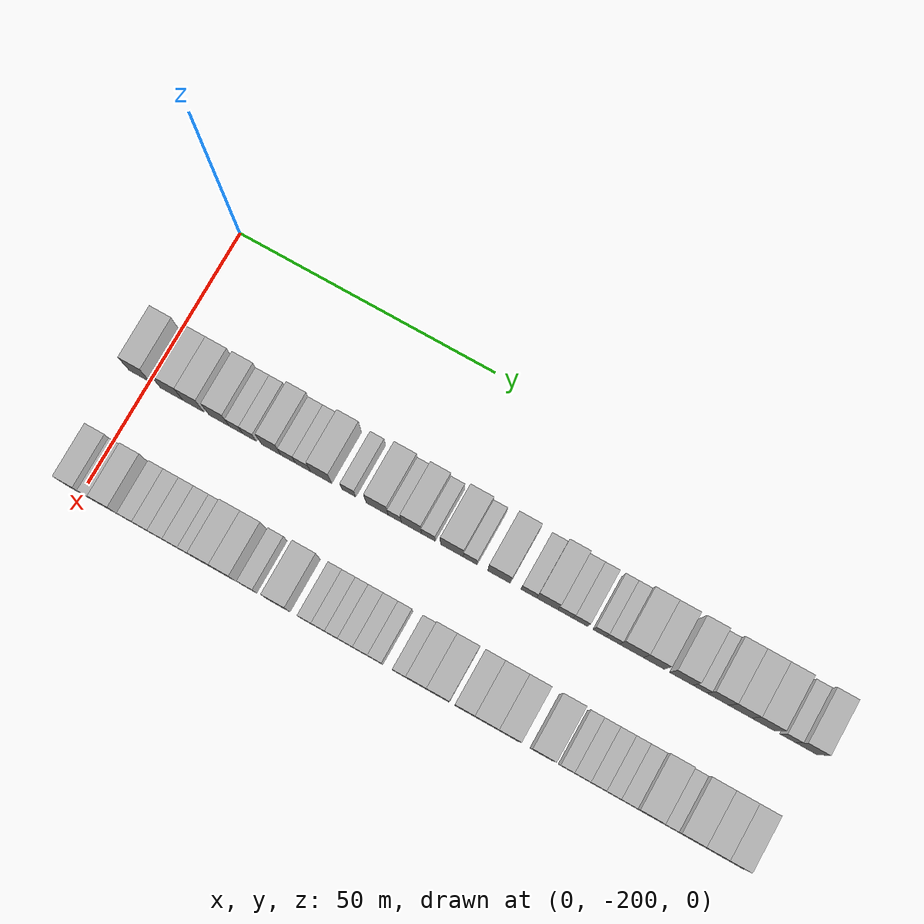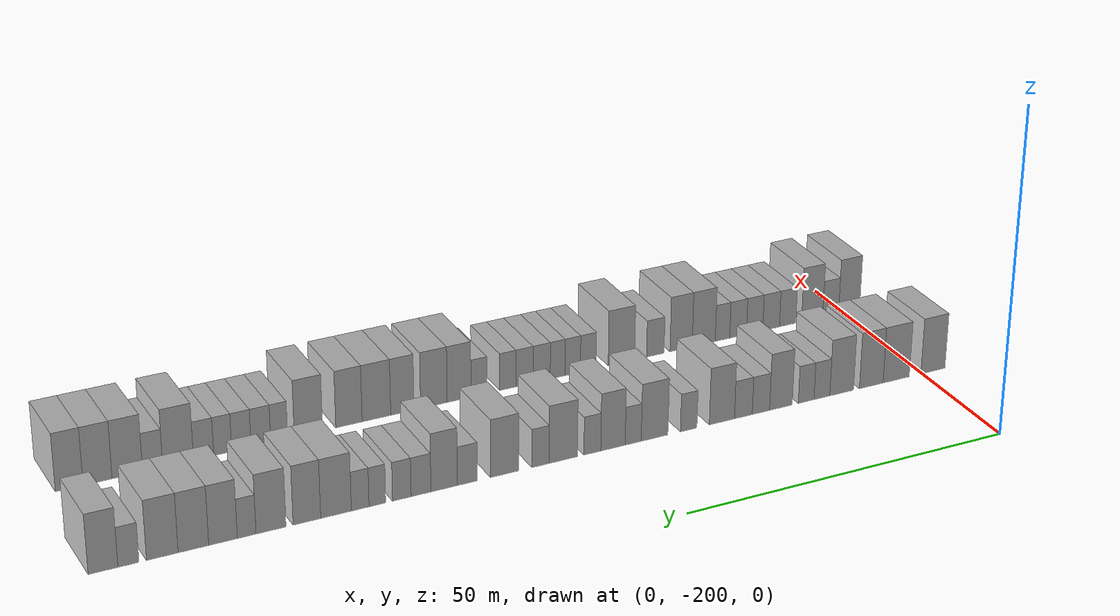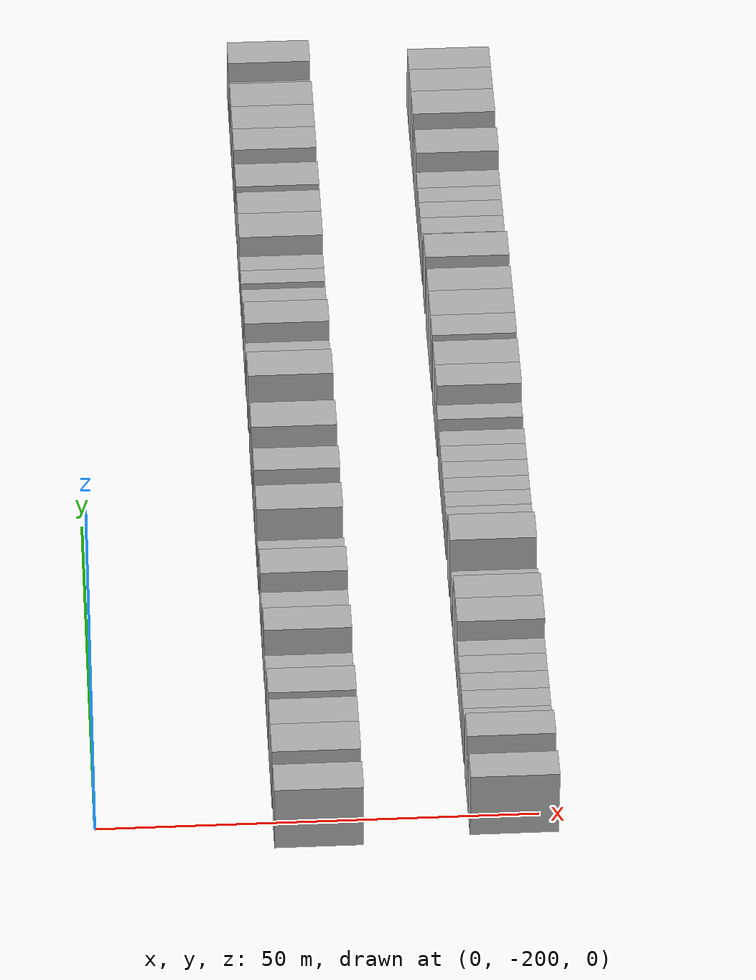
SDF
<sdf version="1.6">
 <world name="default">
  <model name="building_1">
   <static>1</static>
   <pose>25.0000 -201.9067 0 0.000000 0.000000 0.000000</pose>
   <link name="link">
    <pose>0 0 4.50 0 0 0</pose>
    <collision name="collision"><geometry><box><size>10.0000 4.1866 9.0000</size></box></geometry></collision>
    <visual name="visual">
     <cast_shadows>0</cast_shadows>
     <geometry><box><size>10.0000 4.1866 9.0000</size></box></geometry>
     <material>
      <script>
       <uri>model://HANNAS_wall/materials/scripts</uri>
       <uri>model://HANNAS_wall/materials/textures</uri>
       <name>vrc/HANNAS_wall</name>
      </script>
     </material>
    </visual>
   </link>
  </model>
  <model name="building_2">
   <static>1</static>
   <pose>25.0000 -195.5699 0 0.000000 0.000000 0.000000</pose>
   <link name="link">
    <pose>0 0 4.50 0 0 0</pose>
    <collision name="collision"><geometry><box><size>10.0000 4.4871 9.0000</size></box></geometry></collision>
    <visual name="visual">
     <cast_shadows>0</cast_shadows>
     <geometry><box><size>10.0000 4.4871 9.0000</size></box></geometry>
     <material>
      <script>
       <uri>model://HANNAS_wall/materials/scripts</uri>
       <uri>model://HANNAS_wall/materials/textures</uri>
       <name>vrc/HANNAS_wall</name>
      </script>
     </material>
    </visual>
   </link>
  </model>
  <model name="building_3">
   <static>1</static>
   <pose>25.0000 -191.3050 0 0.000000 0.000000 0.000000</pose>
   <link name="link">
    <pose>0 0 4.50 0 0 0</pose>
    <collision name="collision"><geometry><box><size>10.0000 4.0426 9.0000</size></box></geometry></collision>
    <visual name="visual">
     <cast_shadows>0</cast_shadows>
     <geometry><box><size>10.0000 4.0426 9.0000</size></box></geometry>
     <material>
      <script>
       <uri>model://HANNAS_wall/materials/scripts</uri>
       <uri>model://HANNAS_wall/materials/textures</uri>
       <name>vrc/HANNAS_wall</name>
      </script>
     </material>
    </visual>
   </link>
  </model>
  <model name="building_4">
   <static>1</static>
   <pose>25.0000 -186.2852 0 0.000000 0.000000 0.000000</pose>
   <link name="link">
    <pose>0 0 4.50 0 0 0</pose>
    <collision name="collision"><geometry><box><size>10.0000 3.9970 9.0000</size></box></geometry></collision>
    <visual name="visual">
     <cast_shadows>0</cast_shadows>
     <geometry><box><size>10.0000 3.9970 9.0000</size></box></geometry>
     <material>
      <script>
       <uri>model://HANNAS_wall/materials/scripts</uri>
       <uri>model://HANNAS_wall/materials/textures</uri>
       <name>vrc/HANNAS_wall</name>
      </script>
     </material>
    </visual>
   </link>
  </model>
  <model name="building_5">
   <static>1</static>
   <pose>25.0000 -182.9670 0 0.000000 0.000000 0.000000</pose>
   <link name="link">
    <pose>0 0 3.00 0 0 0</pose>
    <collision name="collision"><geometry><box><size>10.0000 2.6395 6.0000</size></box></geometry></collision>
    <visual name="visual">
     <cast_shadows>0</cast_shadows>
     <geometry><box><size>10.0000 2.6395 6.0000</size></box></geometry>
     <material>
      <script>
       <uri>model://HANNAS_wall/materials/scripts</uri>
       <uri>model://HANNAS_wall/materials/textures</uri>
       <name>vrc/HANNAS_wall</name>
      </script>
     </material>
    </visual>
   </link>
  </model>
  <model name="building_6">
   <static>1</static>
   <pose>25.0000 -180.3397 0 0.000000 0.000000 0.000000</pose>
   <link name="link">
    <pose>0 0 3.00 0 0 0</pose>
    <collision name="collision"><geometry><box><size>10.0000 2.6151 6.0000</size></box></geometry></collision>
    <visual name="visual">
     <cast_shadows>0</cast_shadows>
     <geometry><box><size>10.0000 2.6151 6.0000</size></box></geometry>
     <material>
      <script>
       <uri>model://HANNAS_wall/materials/scripts</uri>
       <uri>model://HANNAS_wall/materials/textures</uri>
       <name>vrc/HANNAS_wall</name>
      </script>
     </material>
    </visual>
   </link>
  </model>
  <model name="building_7">
   <static>1</static>
   <pose>25.0000 -176.1576 0 0.000000 0.000000 0.000000</pose>
   <link name="link">
    <pose>0 0 4.50 0 0 0</pose>
    <collision name="collision"><geometry><box><size>10.0000 3.7491 9.0000</size></box></geometry></collision>
    <visual name="visual">
     <cast_shadows>0</cast_shadows>
     <geometry><box><size>10.0000 3.7491 9.0000</size></box></geometry>
     <material>
      <script>
       <uri>model://HANNAS_wall/materials/scripts</uri>
       <uri>model://HANNAS_wall/materials/textures</uri>
       <name>vrc/HANNAS_wall</name>
      </script>
     </material>
    </visual>
   </link>
  </model>
  <model name="building_8">
   <static>1</static>
   <pose>25.0000 -172.8619 0 0.000000 0.000000 0.000000</pose>
   <link name="link">
    <pose>0 0 3.00 0 0 0</pose>
    <collision name="collision"><geometry><box><size>10.0000 2.8423 6.0000</size></box></geometry></collision>
    <visual name="visual">
     <cast_shadows>0</cast_shadows>
     <geometry><box><size>10.0000 2.8423 6.0000</size></box></geometry>
     <material>
      <script>
       <uri>model://HANNAS_wall/materials/scripts</uri>
       <uri>model://HANNAS_wall/materials/textures</uri>
       <name>vrc/HANNAS_wall</name>
      </script>
     </material>
    </visual>
   </link>
  </model>
  <model name="building_9">
   <static>1</static>
   <pose>25.0000 -169.9930 0 0.000000 0.000000 0.000000</pose>
   <link name="link">
    <pose>0 0 3.00 0 0 0</pose>
    <collision name="collision"><geometry><box><size>10.0000 2.8954 6.0000</size></box></geometry></collision>
    <visual name="visual">
     <cast_shadows>0</cast_shadows>
     <geometry><box><size>10.0000 2.8954 6.0000</size></box></geometry>
     <material>
      <script>
       <uri>model://HANNAS_wall/materials/scripts</uri>
       <uri>model://HANNAS_wall/materials/textures</uri>
       <name>vrc/HANNAS_wall</name>
      </script>
     </material>
    </visual>
   </link>
  </model>
  <model name="building_10">
   <static>1</static>
   <pose>25.0000 -166.5042 0 0.000000 0.000000 0.000000</pose>
   <link name="link">
    <pose>0 0 4.50 0 0 0</pose>
    <collision name="collision"><geometry><box><size>10.0000 4.0820 9.0000</size></box></geometry></collision>
    <visual name="visual">
     <cast_shadows>0</cast_shadows>
     <geometry><box><size>10.0000 4.0820 9.0000</size></box></geometry>
     <material>
      <script>
       <uri>model://HANNAS_wall/materials/scripts</uri>
       <uri>model://HANNAS_wall/materials/textures</uri>
       <name>vrc/HANNAS_wall</name>
      </script>
     </material>
    </visual>
   </link>
  </model>
  <model name="building_11">
   <static>1</static>
   <pose>25.0000 -161.1423 0 0.000000 0.000000 0.000000</pose>
   <link name="link">
    <pose>0 0 3.00 0 0 0</pose>
    <collision name="collision"><geometry><box><size>10.0000 2.6419 6.0000</size></box></geometry></collision>
    <visual name="visual">
     <cast_shadows>0</cast_shadows>
     <geometry><box><size>10.0000 2.6419 6.0000</size></box></geometry>
     <material>
      <script>
       <uri>model://HANNAS_wall/materials/scripts</uri>
       <uri>model://HANNAS_wall/materials/textures</uri>
       <name>vrc/HANNAS_wall</name>
      </script>
     </material>
    </visual>
   </link>
  </model>
  <model name="building_12">
   <static>1</static>
   <pose>25.0000 -155.7077 0 0.000000 0.000000 0.000000</pose>
   <link name="link">
    <pose>0 0 4.50 0 0 0</pose>
    <collision name="collision"><geometry><box><size>10.0000 4.2272 9.0000</size></box></geometry></collision>
    <visual name="visual">
     <cast_shadows>0</cast_shadows>
     <geometry><box><size>10.0000 4.2272 9.0000</size></box></geometry>
     <material>
      <script>
       <uri>model://HANNAS_wall/materials/scripts</uri>
       <uri>model://HANNAS_wall/materials/textures</uri>
       <name>vrc/HANNAS_wall</name>
      </script>
     </material>
    </visual>
   </link>
  </model>
  <model name="building_13">
   <static>1</static>
   <pose>25.0000 -152.3350 0 0.000000 0.000000 0.000000</pose>
   <link name="link">
    <pose>0 0 3.00 0 0 0</pose>
    <collision name="collision"><geometry><box><size>10.0000 2.5183 6.0000</size></box></geometry></collision>
    <visual name="visual">
     <cast_shadows>0</cast_shadows>
     <geometry><box><size>10.0000 2.5183 6.0000</size></box></geometry>
     <material>
      <script>
       <uri>model://HANNAS_wall/materials/scripts</uri>
       <uri>model://HANNAS_wall/materials/textures</uri>
       <name>vrc/HANNAS_wall</name>
      </script>
     </material>
    </visual>
   </link>
  </model>
  <model name="building_14">
   <static>1</static>
   <pose>25.0000 -149.1588 0 0.000000 0.000000 0.000000</pose>
   <link name="link">
    <pose>0 0 4.50 0 0 0</pose>
    <collision name="collision"><geometry><box><size>10.0000 3.8340 9.0000</size></box></geometry></collision>
    <visual name="visual">
     <cast_shadows>0</cast_shadows>
     <geometry><box><size>10.0000 3.8340 9.0000</size></box></geometry>
     <material>
      <script>
       <uri>model://HANNAS_wall/materials/scripts</uri>
       <uri>model://HANNAS_wall/materials/textures</uri>
       <name>vrc/HANNAS_wall</name>
      </script>
     </material>
    </visual>
   </link>
  </model>
  <model name="building_15">
   <static>1</static>
   <pose>25.0000 -145.9305 0 0.000000 0.000000 0.000000</pose>
   <link name="link">
    <pose>0 0 3.00 0 0 0</pose>
    <collision name="collision"><geometry><box><size>10.0000 2.6226 6.0000</size></box></geometry></collision>
    <visual name="visual">
     <cast_shadows>0</cast_shadows>
     <geometry><box><size>10.0000 2.6226 6.0000</size></box></geometry>
     <material>
      <script>
       <uri>model://HANNAS_wall/materials/scripts</uri>
       <uri>model://HANNAS_wall/materials/textures</uri>
       <name>vrc/HANNAS_wall</name>
      </script>
     </material>
    </visual>
   </link>
  </model>
  <model name="building_16">
   <static>1</static>
   <pose>25.0000 -141.4418 0 0.000000 0.000000 0.000000</pose>
   <link name="link">
    <pose>0 0 4.50 0 0 0</pose>
    <collision name="collision"><geometry><box><size>10.0000 4.3547 9.0000</size></box></geometry></collision>
    <visual name="visual">
     <cast_shadows>0</cast_shadows>
     <geometry><box><size>10.0000 4.3547 9.0000</size></box></geometry>
     <material>
      <script>
       <uri>model://HANNAS_wall/materials/scripts</uri>
       <uri>model://HANNAS_wall/materials/textures</uri>
       <name>vrc/HANNAS_wall</name>
      </script>
     </material>
    </visual>
   </link>
  </model>
  <model name="building_17">
   <static>1</static>
   <pose>25.0000 -137.9438 0 0.000000 0.000000 0.000000</pose>
   <link name="link">
    <pose>0 0 3.00 0 0 0</pose>
    <collision name="collision"><geometry><box><size>10.0000 2.6413 6.0000</size></box></geometry></collision>
    <visual name="visual">
     <cast_shadows>0</cast_shadows>
     <geometry><box><size>10.0000 2.6413 6.0000</size></box></geometry>
     <material>
      <script>
       <uri>model://HANNAS_wall/materials/scripts</uri>
       <uri>model://HANNAS_wall/materials/textures</uri>
       <name>vrc/HANNAS_wall</name>
      </script>
     </material>
    </visual>
   </link>
  </model>
  <model name="building_18">
   <static>1</static>
   <pose>25.0000 -132.4843 0 0.000000 0.000000 0.000000</pose>
   <link name="link">
    <pose>0 0 4.50 0 0 0</pose>
    <collision name="collision"><geometry><box><size>10.0000 4.2777 9.0000</size></box></geometry></collision>
    <visual name="visual">
     <cast_shadows>0</cast_shadows>
     <geometry><box><size>10.0000 4.2777 9.0000</size></box></geometry>
     <material>
      <script>
       <uri>model://HANNAS_wall/materials/scripts</uri>
       <uri>model://HANNAS_wall/materials/textures</uri>
       <name>vrc/HANNAS_wall</name>
      </script>
     </material>
    </visual>
   </link>
  </model>
  <model name="building_19">
   <static>1</static>
   <pose>25.0000 -126.8623 0 0.000000 0.000000 0.000000</pose>
   <link name="link">
    <pose>0 0 3.00 0 0 0</pose>
    <collision name="collision"><geometry><box><size>10.0000 2.9662 6.0000</size></box></geometry></collision>
    <visual name="visual">
     <cast_shadows>0</cast_shadows>
     <geometry><box><size>10.0000 2.9662 6.0000</size></box></geometry>
     <material>
      <script>
       <uri>model://HANNAS_wall/materials/scripts</uri>
       <uri>model://HANNAS_wall/materials/textures</uri>
       <name>vrc/HANNAS_wall</name>
      </script>
     </material>
    </visual>
   </link>
  </model>
  <model name="building_20">
   <static>1</static>
   <pose>25.0000 -123.4100 0 0.000000 0.000000 0.000000</pose>
   <link name="link">
    <pose>0 0 4.50 0 0 0</pose>
    <collision name="collision"><geometry><box><size>10.0000 3.9384 9.0000</size></box></geometry></collision>
    <visual name="visual">
     <cast_shadows>0</cast_shadows>
     <geometry><box><size>10.0000 3.9384 9.0000</size></box></geometry>
     <material>
      <script>
       <uri>model://HANNAS_wall/materials/scripts</uri>
       <uri>model://HANNAS_wall/materials/textures</uri>
       <name>vrc/HANNAS_wall</name>
      </script>
     </material>
    </visual>
   </link>
  </model>
  <model name="building_21">
   <static>1</static>
   <pose>25.0000 -119.9843 0 0.000000 0.000000 0.000000</pose>
   <link name="link">
    <pose>0 0 3.00 0 0 0</pose>
    <collision name="collision"><geometry><box><size>10.0000 2.9129 6.0000</size></box></geometry></collision>
    <visual name="visual">
     <cast_shadows>0</cast_shadows>
     <geometry><box><size>10.0000 2.9129 6.0000</size></box></geometry>
     <material>
      <script>
       <uri>model://HANNAS_wall/materials/scripts</uri>
       <uri>model://HANNAS_wall/materials/textures</uri>
       <name>vrc/HANNAS_wall</name>
      </script>
     </material>
    </visual>
   </link>
  </model>
  <model name="building_22">
   <static>1</static>
   <pose>25.0000 -117.1585 0 0.000000 0.000000 0.000000</pose>
   <link name="link">
    <pose>0 0 3.00 0 0 0</pose>
    <collision name="collision"><geometry><box><size>10.0000 2.7387 6.0000</size></box></geometry></collision>
    <visual name="visual">
     <cast_shadows>0</cast_shadows>
     <geometry><box><size>10.0000 2.7387 6.0000</size></box></geometry>
     <material>
      <script>
       <uri>model://HANNAS_wall/materials/scripts</uri>
       <uri>model://HANNAS_wall/materials/textures</uri>
       <name>vrc/HANNAS_wall</name>
      </script>
     </material>
    </visual>
   </link>
  </model>
  <model name="building_23">
   <static>1</static>
   <pose>25.0000 -113.5812 0 0.000000 0.000000 0.000000</pose>
   <link name="link">
    <pose>0 0 3.00 0 0 0</pose>
    <collision name="collision"><geometry><box><size>10.0000 2.4157 6.0000</size></box></geometry></collision>
    <visual name="visual">
     <cast_shadows>0</cast_shadows>
     <geometry><box><size>10.0000 2.4157 6.0000</size></box></geometry>
     <material>
      <script>
       <uri>model://HANNAS_wall/materials/scripts</uri>
       <uri>model://HANNAS_wall/materials/textures</uri>
       <name>vrc/HANNAS_wall</name>
      </script>
     </material>
    </visual>
   </link>
  </model>
  <model name="building_24">
   <static>1</static>
   <pose>25.0000 -111.0891 0 0.000000 0.000000 0.000000</pose>
   <link name="link">
    <pose>0 0 3.00 0 0 0</pose>
    <collision name="collision"><geometry><box><size>10.0000 2.5686 6.0000</size></box></geometry></collision>
    <visual name="visual">
     <cast_shadows>0</cast_shadows>
     <geometry><box><size>10.0000 2.5686 6.0000</size></box></geometry>
     <material>
      <script>
       <uri>model://HANNAS_wall/materials/scripts</uri>
       <uri>model://HANNAS_wall/materials/textures</uri>
       <name>vrc/HANNAS_wall</name>
      </script>
     </material>
    </visual>
   </link>
  </model>
  <model name="building_25">
   <static>1</static>
   <pose>25.0000 -107.6011 0 0.000000 0.000000 0.000000</pose>
   <link name="link">
    <pose>0 0 4.50 0 0 0</pose>
    <collision name="collision"><geometry><box><size>10.0000 4.4074 9.0000</size></box></geometry></collision>
    <visual name="visual">
     <cast_shadows>0</cast_shadows>
     <geometry><box><size>10.0000 4.4074 9.0000</size></box></geometry>
     <material>
      <script>
       <uri>model://HANNAS_wall/materials/scripts</uri>
       <uri>model://HANNAS_wall/materials/textures</uri>
       <name>vrc/HANNAS_wall</name>
      </script>
     </material>
    </visual>
   </link>
  </model>
  <model name="building_26">
   <static>1</static>
   <pose>25.0000 -103.4328 0 0.000000 0.000000 0.000000</pose>
   <link name="link">
    <pose>0 0 4.50 0 0 0</pose>
    <collision name="collision"><geometry><box><size>10.0000 3.9291 9.0000</size></box></geometry></collision>
    <visual name="visual">
     <cast_shadows>0</cast_shadows>
     <geometry><box><size>10.0000 3.9291 9.0000</size></box></geometry>
     <material>
      <script>
       <uri>model://HANNAS_wall/materials/scripts</uri>
       <uri>model://HANNAS_wall/materials/textures</uri>
       <name>vrc/HANNAS_wall</name>
      </script>
     </material>
    </visual>
   </link>
  </model>
  <model name="building_27">
   <static>1</static>
   <pose>25.0000 -98.3525 0 0.000000 0.000000 0.000000</pose>
   <link name="link">
    <pose>0 0 4.50 0 0 0</pose>
    <collision name="collision"><geometry><box><size>10.0000 4.2314 9.0000</size></box></geometry></collision>
    <visual name="visual">
     <cast_shadows>0</cast_shadows>
     <geometry><box><size>10.0000 4.2314 9.0000</size></box></geometry>
     <material>
      <script>
       <uri>model://HANNAS_wall/materials/scripts</uri>
       <uri>model://HANNAS_wall/materials/textures</uri>
       <name>vrc/HANNAS_wall</name>
      </script>
     </material>
    </visual>
   </link>
  </model>
  <model name="building_28">
   <static>1</static>
   <pose>25.0000 -94.9310 0 0.000000 0.000000 0.000000</pose>
   <link name="link">
    <pose>0 0 3.00 0 0 0</pose>
    <collision name="collision"><geometry><box><size>10.0000 2.6116 6.0000</size></box></geometry></collision>
    <visual name="visual">
     <cast_shadows>0</cast_shadows>
     <geometry><box><size>10.0000 2.6116 6.0000</size></box></geometry>
     <material>
      <script>
       <uri>model://HANNAS_wall/materials/scripts</uri>
       <uri>model://HANNAS_wall/materials/textures</uri>
       <name>vrc/HANNAS_wall</name>
      </script>
     </material>
    </visual>
   </link>
  </model>
  <model name="building_29">
   <static>1</static>
   <pose>25.0000 -91.6338 0 0.000000 0.000000 0.000000</pose>
   <link name="link">
    <pose>0 0 4.50 0 0 0</pose>
    <collision name="collision"><geometry><box><size>10.0000 3.9828 9.0000</size></box></geometry></collision>
    <visual name="visual">
     <cast_shadows>0</cast_shadows>
     <geometry><box><size>10.0000 3.9828 9.0000</size></box></geometry>
     <material>
      <script>
       <uri>model://HANNAS_wall/materials/scripts</uri>
       <uri>model://HANNAS_wall/materials/textures</uri>
       <name>vrc/HANNAS_wall</name>
      </script>
     </material>
    </visual>
   </link>
  </model>
  <model name="building_30">
   <static>1</static>
   <pose>25.0000 -87.5377 0 0.000000 0.000000 0.000000</pose>
   <link name="link">
    <pose>0 0 4.50 0 0 0</pose>
    <collision name="collision"><geometry><box><size>10.0000 4.2092 9.0000</size></box></geometry></collision>
    <visual name="visual">
     <cast_shadows>0</cast_shadows>
     <geometry><box><size>10.0000 4.2092 9.0000</size></box></geometry>
     <material>
      <script>
       <uri>model://HANNAS_wall/materials/scripts</uri>
       <uri>model://HANNAS_wall/materials/textures</uri>
       <name>vrc/HANNAS_wall</name>
      </script>
     </material>
    </visual>
   </link>
  </model>
  <model name="building_31">
   <static>1</static>
   <pose>25.0000 -83.2692 0 0.000000 0.000000 0.000000</pose>
   <link name="link">
    <pose>0 0 4.50 0 0 0</pose>
    <collision name="collision"><geometry><box><size>10.0000 4.3280 9.0000</size></box></geometry></collision>
    <visual name="visual">
     <cast_shadows>0</cast_shadows>
     <geometry><box><size>10.0000 4.3280 9.0000</size></box></geometry>
     <material>
      <script>
       <uri>model://HANNAS_wall/materials/scripts</uri>
       <uri>model://HANNAS_wall/materials/textures</uri>
       <name>vrc/HANNAS_wall</name>
      </script>
     </material>
    </visual>
   </link>
  </model>
  <model name="building_32">
   <static>1</static>
   <pose>25.0000 -78.6781 0 0.000000 0.000000 0.000000</pose>
   <link name="link">
    <pose>0 0 3.00 0 0 0</pose>
    <collision name="collision"><geometry><box><size>10.0000 2.8541 6.0000</size></box></geometry></collision>
    <visual name="visual">
     <cast_shadows>0</cast_shadows>
     <geometry><box><size>10.0000 2.8541 6.0000</size></box></geometry>
     <material>
      <script>
       <uri>model://HANNAS_wall/materials/scripts</uri>
       <uri>model://HANNAS_wall/materials/textures</uri>
       <name>vrc/HANNAS_wall</name>
      </script>
     </material>
    </visual>
   </link>
  </model>
  <model name="building_33">
   <static>1</static>
   <pose>25.0000 -75.2485 0 0.000000 0.000000 0.000000</pose>
   <link name="link">
    <pose>0 0 4.50 0 0 0</pose>
    <collision name="collision"><geometry><box><size>10.0000 4.0050 9.0000</size></box></geometry></collision>
    <visual name="visual">
     <cast_shadows>0</cast_shadows>
     <geometry><box><size>10.0000 4.0050 9.0000</size></box></geometry>
     <material>
      <script>
       <uri>model://HANNAS_wall/materials/scripts</uri>
       <uri>model://HANNAS_wall/materials/textures</uri>
       <name>vrc/HANNAS_wall</name>
      </script>
     </material>
    </visual>
   </link>
  </model>
  <model name="building_100">
   <static>1</static>
   <pose>47.0000 -201.1141 0 0.000000 0.000000 0.000000</pose>
   <link name="link">
    <pose>0 0 4.50 0 0 0</pose>
    <collision name="collision"><geometry><box><size>10.0000 3.7717 9.0000</size></box></geometry></collision>
    <visual name="visual">
     <cast_shadows>0</cast_shadows>
     <geometry><box><size>10.0000 3.7717 9.0000</size></box></geometry>
     <material>
      <script>
       <uri>model://HANNAS_wall/materials/scripts</uri>
       <uri>model://HANNAS_wall/materials/textures</uri>
       <name>vrc/HANNAS_wall</name>
      </script>
     </material>
    </visual>
   </link>
  </model>
  <model name="building_101">
   <static>1</static>
   <pose>47.0000 -197.8253 0 0.000000 0.000000 0.000000</pose>
   <link name="link">
    <pose>0 0 3.00 0 0 0</pose>
    <collision name="collision"><geometry><box><size>10.0000 2.8060 6.0000</size></box></geometry></collision>
    <visual name="visual">
     <cast_shadows>0</cast_shadows>
     <geometry><box><size>10.0000 2.8060 6.0000</size></box></geometry>
     <material>
      <script>
       <uri>model://HANNAS_wall/materials/scripts</uri>
       <uri>model://HANNAS_wall/materials/textures</uri>
       <name>vrc/HANNAS_wall</name>
      </script>
     </material>
    </visual>
   </link>
  </model>
  <model name="building_102">
   <static>1</static>
   <pose>47.0000 -194.5487 0 0.000000 0.000000 0.000000</pose>
   <link name="link">
    <pose>0 0 4.50 0 0 0</pose>
    <collision name="collision"><geometry><box><size>10.0000 3.7472 9.0000</size></box></geometry></collision>
    <visual name="visual">
     <cast_shadows>0</cast_shadows>
     <geometry><box><size>10.0000 3.7472 9.0000</size></box></geometry>
     <material>
      <script>
       <uri>model://HANNAS_wall/materials/scripts</uri>
       <uri>model://HANNAS_wall/materials/textures</uri>
       <name>vrc/HANNAS_wall</name>
      </script>
     </material>
    </visual>
   </link>
  </model>
  <model name="building_103">
   <static>1</static>
   <pose>47.0000 -190.2454 0 0.000000 0.000000 0.000000</pose>
   <link name="link">
    <pose>0 0 3.00 0 0 0</pose>
    <collision name="collision"><geometry><box><size>10.0000 2.8595 6.0000</size></box></geometry></collision>
    <visual name="visual">
     <cast_shadows>0</cast_shadows>
     <geometry><box><size>10.0000 2.8595 6.0000</size></box></geometry>
     <material>
      <script>
       <uri>model://HANNAS_wall/materials/scripts</uri>
       <uri>model://HANNAS_wall/materials/textures</uri>
       <name>vrc/HANNAS_wall</name>
      </script>
     </material>
    </visual>
   </link>
  </model>
  <model name="building_104">
   <static>1</static>
   <pose>47.0000 -187.3549 0 0.000000 0.000000 0.000000</pose>
   <link name="link">
    <pose>0 0 3.00 0 0 0</pose>
    <collision name="collision"><geometry><box><size>10.0000 2.9215 6.0000</size></box></geometry></collision>
    <visual name="visual">
     <cast_shadows>0</cast_shadows>
     <geometry><box><size>10.0000 2.9215 6.0000</size></box></geometry>
     <material>
      <script>
       <uri>model://HANNAS_wall/materials/scripts</uri>
       <uri>model://HANNAS_wall/materials/textures</uri>
       <name>vrc/HANNAS_wall</name>
      </script>
     </material>
    </visual>
   </link>
  </model>
  <model name="building_105">
   <static>1</static>
   <pose>47.0000 -184.4824 0 0.000000 0.000000 0.000000</pose>
   <link name="link">
    <pose>0 0 3.00 0 0 0</pose>
    <collision name="collision"><geometry><box><size>10.0000 2.8235 6.0000</size></box></geometry></collision>
    <visual name="visual">
     <cast_shadows>0</cast_shadows>
     <geometry><box><size>10.0000 2.8235 6.0000</size></box></geometry>
     <material>
      <script>
       <uri>model://HANNAS_wall/materials/scripts</uri>
       <uri>model://HANNAS_wall/materials/textures</uri>
       <name>vrc/HANNAS_wall</name>
      </script>
     </material>
    </visual>
   </link>
  </model>
  <model name="building_106">
   <static>1</static>
   <pose>47.0000 -181.6299 0 0.000000 0.000000 0.000000</pose>
   <link name="link">
    <pose>0 0 3.00 0 0 0</pose>
    <collision name="collision"><geometry><box><size>10.0000 2.8813 6.0000</size></box></geometry></collision>
    <visual name="visual">
     <cast_shadows>0</cast_shadows>
     <geometry><box><size>10.0000 2.8813 6.0000</size></box></geometry>
     <material>
      <script>
       <uri>model://HANNAS_wall/materials/scripts</uri>
       <uri>model://HANNAS_wall/materials/textures</uri>
       <name>vrc/HANNAS_wall</name>
      </script>
     </material>
    </visual>
   </link>
  </model>
  <model name="building_107">
   <static>1</static>
   <pose>47.0000 -178.9550 0 0.000000 0.000000 0.000000</pose>
   <link name="link">
    <pose>0 0 3.00 0 0 0</pose>
    <collision name="collision"><geometry><box><size>10.0000 2.4685 6.0000</size></box></geometry></collision>
    <visual name="visual">
     <cast_shadows>0</cast_shadows>
     <geometry><box><size>10.0000 2.4685 6.0000</size></box></geometry>
     <material>
      <script>
       <uri>model://HANNAS_wall/materials/scripts</uri>
       <uri>model://HANNAS_wall/materials/textures</uri>
       <name>vrc/HANNAS_wall</name>
      </script>
     </material>
    </visual>
   </link>
  </model>
  <model name="building_108">
   <static>1</static>
   <pose>47.0000 -175.7510 0 0.000000 0.000000 0.000000</pose>
   <link name="link">
    <pose>0 0 4.50 0 0 0</pose>
    <collision name="collision"><geometry><box><size>10.0000 3.9395 9.0000</size></box></geometry></collision>
    <visual name="visual">
     <cast_shadows>0</cast_shadows>
     <geometry><box><size>10.0000 3.9395 9.0000</size></box></geometry>
     <material>
      <script>
       <uri>model://HANNAS_wall/materials/scripts</uri>
       <uri>model://HANNAS_wall/materials/textures</uri>
       <name>vrc/HANNAS_wall</name>
      </script>
     </material>
    </visual>
   </link>
  </model>
  <model name="building_109">
   <static>1</static>
   <pose>47.0000 -171.9029 0 0.000000 0.000000 0.000000</pose>
   <link name="link">
    <pose>0 0 4.50 0 0 0</pose>
    <collision name="collision"><geometry><box><size>10.0000 3.7567 9.0000</size></box></geometry></collision>
    <visual name="visual">
     <cast_shadows>0</cast_shadows>
     <geometry><box><size>10.0000 3.7567 9.0000</size></box></geometry>
     <material>
      <script>
       <uri>model://HANNAS_wall/materials/scripts</uri>
       <uri>model://HANNAS_wall/materials/textures</uri>
       <name>vrc/HANNAS_wall</name>
      </script>
     </material>
    </visual>
   </link>
  </model>
  <model name="building_110">
   <static>1</static>
   <pose>47.0000 -167.5541 0 0.000000 0.000000 0.000000</pose>
   <link name="link">
    <pose>0 0 3.00 0 0 0</pose>
    <collision name="collision"><geometry><box><size>10.0000 2.9410 6.0000</size></box></geometry></collision>
    <visual name="visual">
     <cast_shadows>0</cast_shadows>
     <geometry><box><size>10.0000 2.9410 6.0000</size></box></geometry>
     <material>
      <script>
       <uri>model://HANNAS_wall/materials/scripts</uri>
       <uri>model://HANNAS_wall/materials/textures</uri>
       <name>vrc/HANNAS_wall</name>
      </script>
     </material>
    </visual>
   </link>
  </model>
  <model name="building_111">
   <static>1</static>
   <pose>47.0000 -161.8991 0 0.000000 0.000000 0.000000</pose>
   <link name="link">
    <pose>0 0 4.50 0 0 0</pose>
    <collision name="collision"><geometry><box><size>10.0000 4.3691 9.0000</size></box></geometry></collision>
    <visual name="visual">
     <cast_shadows>0</cast_shadows>
     <geometry><box><size>10.0000 4.3691 9.0000</size></box></geometry>
     <material>
      <script>
       <uri>model://HANNAS_wall/materials/scripts</uri>
       <uri>model://HANNAS_wall/materials/textures</uri>
       <name>vrc/HANNAS_wall</name>
      </script>
     </material>
    </visual>
   </link>
  </model>
  <model name="building_112">
   <static>1</static>
   <pose>47.0000 -156.4249 0 0.000000 0.000000 0.000000</pose>
   <link name="link">
    <pose>0 0 3.00 0 0 0</pose>
    <collision name="collision"><geometry><box><size>10.0000 2.5792 6.0000</size></box></geometry></collision>
    <visual name="visual">
     <cast_shadows>0</cast_shadows>
     <geometry><box><size>10.0000 2.5792 6.0000</size></box></geometry>
     <material>
      <script>
       <uri>model://HANNAS_wall/materials/scripts</uri>
       <uri>model://HANNAS_wall/materials/textures</uri>
       <name>vrc/HANNAS_wall</name>
      </script>
     </material>
    </visual>
   </link>
  </model>
  <model name="building_113">
   <static>1</static>
   <pose>47.0000 -153.8695 0 0.000000 0.000000 0.000000</pose>
   <link name="link">
    <pose>0 0 3.00 0 0 0</pose>
    <collision name="collision"><geometry><box><size>10.0000 2.5317 6.0000</size></box></geometry></collision>
    <visual name="visual">
     <cast_shadows>0</cast_shadows>
     <geometry><box><size>10.0000 2.5317 6.0000</size></box></geometry>
     <material>
      <script>
       <uri>model://HANNAS_wall/materials/scripts</uri>
       <uri>model://HANNAS_wall/materials/textures</uri>
       <name>vrc/HANNAS_wall</name>
      </script>
     </material>
    </visual>
   </link>
  </model>
  <model name="building_114">
   <static>1</static>
   <pose>47.0000 -151.4029 0 0.000000 0.000000 0.000000</pose>
   <link name="link">
    <pose>0 0 3.00 0 0 0</pose>
    <collision name="collision"><geometry><box><size>10.0000 2.4016 6.0000</size></box></geometry></collision>
    <visual name="visual">
     <cast_shadows>0</cast_shadows>
     <geometry><box><size>10.0000 2.4016 6.0000</size></box></geometry>
     <material>
      <script>
       <uri>model://HANNAS_wall/materials/scripts</uri>
       <uri>model://HANNAS_wall/materials/textures</uri>
       <name>vrc/HANNAS_wall</name>
      </script>
     </material>
    </visual>
   </link>
  </model>
  <model name="building_115">
   <static>1</static>
   <pose>47.0000 -148.8119 0 0.000000 0.000000 0.000000</pose>
   <link name="link">
    <pose>0 0 3.00 0 0 0</pose>
    <collision name="collision"><geometry><box><size>10.0000 2.7805 6.0000</size></box></geometry></collision>
    <visual name="visual">
     <cast_shadows>0</cast_shadows>
     <geometry><box><size>10.0000 2.7805 6.0000</size></box></geometry>
     <material>
      <script>
       <uri>model://HANNAS_wall/materials/scripts</uri>
       <uri>model://HANNAS_wall/materials/textures</uri>
       <name>vrc/HANNAS_wall</name>
      </script>
     </material>
    </visual>
   </link>
  </model>
  <model name="building_116">
   <static>1</static>
   <pose>47.0000 -146.0488 0 0.000000 0.000000 0.000000</pose>
   <link name="link">
    <pose>0 0 3.00 0 0 0</pose>
    <collision name="collision"><geometry><box><size>10.0000 2.7457 6.0000</size></box></geometry></collision>
    <visual name="visual">
     <cast_shadows>0</cast_shadows>
     <geometry><box><size>10.0000 2.7457 6.0000</size></box></geometry>
     <material>
      <script>
       <uri>model://HANNAS_wall/materials/scripts</uri>
       <uri>model://HANNAS_wall/materials/textures</uri>
       <name>vrc/HANNAS_wall</name>
      </script>
     </material>
    </visual>
   </link>
  </model>
  <model name="building_117">
   <static>1</static>
   <pose>47.0000 -143.3742 0 0.000000 0.000000 0.000000</pose>
   <link name="link">
    <pose>0 0 3.00 0 0 0</pose>
    <collision name="collision"><geometry><box><size>10.0000 2.6034 6.0000</size></box></geometry></collision>
    <visual name="visual">
     <cast_shadows>0</cast_shadows>
     <geometry><box><size>10.0000 2.6034 6.0000</size></box></geometry>
     <material>
      <script>
       <uri>model://HANNAS_wall/materials/scripts</uri>
       <uri>model://HANNAS_wall/materials/textures</uri>
       <name>vrc/HANNAS_wall</name>
      </script>
     </material>
    </visual>
   </link>
  </model>
  <model name="building_118">
   <static>1</static>
   <pose>47.0000 -138.7863 0 0.000000 0.000000 0.000000</pose>
   <link name="link">
    <pose>0 0 3.00 0 0 0</pose>
    <collision name="collision"><geometry><box><size>10.0000 2.5724 6.0000</size></box></geometry></collision>
    <visual name="visual">
     <cast_shadows>0</cast_shadows>
     <geometry><box><size>10.0000 2.5724 6.0000</size></box></geometry>
     <material>
      <script>
       <uri>model://HANNAS_wall/materials/scripts</uri>
       <uri>model://HANNAS_wall/materials/textures</uri>
       <name>vrc/HANNAS_wall</name>
      </script>
     </material>
    </visual>
   </link>
  </model>
  <model name="building_119">
   <static>1</static>
   <pose>47.0000 -135.6165 0 0.000000 0.000000 0.000000</pose>
   <link name="link">
    <pose>0 0 4.50 0 0 0</pose>
    <collision name="collision"><geometry><box><size>10.0000 3.7672 9.0000</size></box></geometry></collision>
    <visual name="visual">
     <cast_shadows>0</cast_shadows>
     <geometry><box><size>10.0000 3.7672 9.0000</size></box></geometry>
     <material>
      <script>
       <uri>model://HANNAS_wall/materials/scripts</uri>
       <uri>model://HANNAS_wall/materials/textures</uri>
       <name>vrc/HANNAS_wall</name>
      </script>
     </material>
    </visual>
   </link>
  </model>
  <model name="building_120">
   <static>1</static>
   <pose>47.0000 -131.6439 0 0.000000 0.000000 0.000000</pose>
   <link name="link">
    <pose>0 0 4.50 0 0 0</pose>
    <collision name="collision"><geometry><box><size>10.0000 4.1779 9.0000</size></box></geometry></collision>
    <visual name="visual">
     <cast_shadows>0</cast_shadows>
     <geometry><box><size>10.0000 4.1779 9.0000</size></box></geometry>
     <material>
      <script>
       <uri>model://HANNAS_wall/materials/scripts</uri>
       <uri>model://HANNAS_wall/materials/textures</uri>
       <name>vrc/HANNAS_wall</name>
      </script>
     </material>
    </visual>
   </link>
  </model>
  <model name="building_121">
   <static>1</static>
   <pose>47.0000 -126.7428 0 0.000000 0.000000 0.000000</pose>
   <link name="link">
    <pose>0 0 4.50 0 0 0</pose>
    <collision name="collision"><geometry><box><size>10.0000 3.6245 9.0000</size></box></geometry></collision>
    <visual name="visual">
     <cast_shadows>0</cast_shadows>
     <geometry><box><size>10.0000 3.6245 9.0000</size></box></geometry>
     <material>
      <script>
       <uri>model://HANNAS_wall/materials/scripts</uri>
       <uri>model://HANNAS_wall/materials/textures</uri>
       <name>vrc/HANNAS_wall</name>
      </script>
     </material>
    </visual>
   </link>
  </model>
  <model name="building_122">
   <static>1</static>
   <pose>47.0000 -122.7348 0 0.000000 0.000000 0.000000</pose>
   <link name="link">
    <pose>0 0 4.50 0 0 0</pose>
    <collision name="collision"><geometry><box><size>10.0000 4.3916 9.0000</size></box></geometry></collision>
    <visual name="visual">
     <cast_shadows>0</cast_shadows>
     <geometry><box><size>10.0000 4.3916 9.0000</size></box></geometry>
     <material>
      <script>
       <uri>model://HANNAS_wall/materials/scripts</uri>
       <uri>model://HANNAS_wall/materials/textures</uri>
       <name>vrc/HANNAS_wall</name>
      </script>
     </material>
    </visual>
   </link>
  </model>
  <model name="building_123">
   <static>1</static>
   <pose>47.0000 -118.5253 0 0.000000 0.000000 0.000000</pose>
   <link name="link">
    <pose>0 0 4.50 0 0 0</pose>
    <collision name="collision"><geometry><box><size>10.0000 4.0273 9.0000</size></box></geometry></collision>
    <visual name="visual">
     <cast_shadows>0</cast_shadows>
     <geometry><box><size>10.0000 4.0273 9.0000</size></box></geometry>
     <material>
      <script>
       <uri>model://HANNAS_wall/materials/scripts</uri>
       <uri>model://HANNAS_wall/materials/textures</uri>
       <name>vrc/HANNAS_wall</name>
      </script>
     </material>
    </visual>
   </link>
  </model>
  <model name="building_124">
   <static>1</static>
   <pose>47.0000 -112.3797 0 0.000000 0.000000 0.000000</pose>
   <link name="link">
    <pose>0 0 4.50 0 0 0</pose>
    <collision name="collision"><geometry><box><size>10.0000 4.2639 9.0000</size></box></geometry></collision>
    <visual name="visual">
     <cast_shadows>0</cast_shadows>
     <geometry><box><size>10.0000 4.2639 9.0000</size></box></geometry>
     <material>
      <script>
       <uri>model://HANNAS_wall/materials/scripts</uri>
       <uri>model://HANNAS_wall/materials/textures</uri>
       <name>vrc/HANNAS_wall</name>
      </script>
     </material>
    </visual>
   </link>
  </model>
  <model name="building_125">
   <static>1</static>
   <pose>47.0000 -107.9838 0 0.000000 0.000000 0.000000</pose>
   <link name="link">
    <pose>0 0 3.00 0 0 0</pose>
    <collision name="collision"><geometry><box><size>10.0000 2.5279 6.0000</size></box></geometry></collision>
    <visual name="visual">
     <cast_shadows>0</cast_shadows>
     <geometry><box><size>10.0000 2.5279 6.0000</size></box></geometry>
     <material>
      <script>
       <uri>model://HANNAS_wall/materials/scripts</uri>
       <uri>model://HANNAS_wall/materials/textures</uri>
       <name>vrc/HANNAS_wall</name>
      </script>
     </material>
    </visual>
   </link>
  </model>
  <model name="building_126">
   <static>1</static>
   <pose>47.0000 -105.2544 0 0.000000 0.000000 0.000000</pose>
   <link name="link">
    <pose>0 0 3.00 0 0 0</pose>
    <collision name="collision"><geometry><box><size>10.0000 2.9309 6.0000</size></box></geometry></collision>
    <visual name="visual">
     <cast_shadows>0</cast_shadows>
     <geometry><box><size>10.0000 2.9309 6.0000</size></box></geometry>
     <material>
      <script>
       <uri>model://HANNAS_wall/materials/scripts</uri>
       <uri>model://HANNAS_wall/materials/textures</uri>
       <name>vrc/HANNAS_wall</name>
      </script>
     </material>
    </visual>
   </link>
  </model>
  <model name="building_127">
   <static>1</static>
   <pose>47.0000 -102.3627 0 0.000000 0.000000 0.000000</pose>
   <link name="link">
    <pose>0 0 3.00 0 0 0</pose>
    <collision name="collision"><geometry><box><size>10.0000 2.8524 6.0000</size></box></geometry></collision>
    <visual name="visual">
     <cast_shadows>0</cast_shadows>
     <geometry><box><size>10.0000 2.8524 6.0000</size></box></geometry>
     <material>
      <script>
       <uri>model://HANNAS_wall/materials/scripts</uri>
       <uri>model://HANNAS_wall/materials/textures</uri>
       <name>vrc/HANNAS_wall</name>
      </script>
     </material>
    </visual>
   </link>
  </model>
  <model name="building_128">
   <static>1</static>
   <pose>47.0000 -99.6128 0 0.000000 0.000000 0.000000</pose>
   <link name="link">
    <pose>0 0 3.00 0 0 0</pose>
    <collision name="collision"><geometry><box><size>10.0000 2.6473 6.0000</size></box></geometry></collision>
    <visual name="visual">
     <cast_shadows>0</cast_shadows>
     <geometry><box><size>10.0000 2.6473 6.0000</size></box></geometry>
     <material>
      <script>
       <uri>model://HANNAS_wall/materials/scripts</uri>
       <uri>model://HANNAS_wall/materials/textures</uri>
       <name>vrc/HANNAS_wall</name>
      </script>
     </material>
    </visual>
   </link>
  </model>
  <model name="building_129">
   <static>1</static>
   <pose>47.0000 -96.8115 0 0.000000 0.000000 0.000000</pose>
   <link name="link">
    <pose>0 0 3.00 0 0 0</pose>
    <collision name="collision"><geometry><box><size>10.0000 2.9554 6.0000</size></box></geometry></collision>
    <visual name="visual">
     <cast_shadows>0</cast_shadows>
     <geometry><box><size>10.0000 2.9554 6.0000</size></box></geometry>
     <material>
      <script>
       <uri>model://HANNAS_wall/materials/scripts</uri>
       <uri>model://HANNAS_wall/materials/textures</uri>
       <name>vrc/HANNAS_wall</name>
      </script>
     </material>
    </visual>
   </link>
  </model>
  <model name="building_130">
   <static>1</static>
   <pose>47.0000 -93.1068 0 0.000000 0.000000 0.000000</pose>
   <link name="link">
    <pose>0 0 4.50 0 0 0</pose>
    <collision name="collision"><geometry><box><size>10.0000 4.4540 9.0000</size></box></geometry></collision>
    <visual name="visual">
     <cast_shadows>0</cast_shadows>
     <geometry><box><size>10.0000 4.4540 9.0000</size></box></geometry>
     <material>
      <script>
       <uri>model://HANNAS_wall/materials/scripts</uri>
       <uri>model://HANNAS_wall/materials/textures</uri>
       <name>vrc/HANNAS_wall</name>
      </script>
     </material>
    </visual>
   </link>
  </model>
  <model name="building_131">
   <static>1</static>
   <pose>47.0000 -89.4252 0 0.000000 0.000000 0.000000</pose>
   <link name="link">
    <pose>0 0 3.00 0 0 0</pose>
    <collision name="collision"><geometry><box><size>10.0000 2.9091 6.0000</size></box></geometry></collision>
    <visual name="visual">
     <cast_shadows>0</cast_shadows>
     <geometry><box><size>10.0000 2.9091 6.0000</size></box></geometry>
     <material>
      <script>
       <uri>model://HANNAS_wall/materials/scripts</uri>
       <uri>model://HANNAS_wall/materials/textures</uri>
       <name>vrc/HANNAS_wall</name>
      </script>
     </material>
    </visual>
   </link>
  </model>
  <model name="building_132">
   <static>1</static>
   <pose>47.0000 -85.7981 0 0.000000 0.000000 0.000000</pose>
   <link name="link">
    <pose>0 0 4.50 0 0 0</pose>
    <collision name="collision"><geometry><box><size>10.0000 4.3449 9.0000</size></box></geometry></collision>
    <visual name="visual">
     <cast_shadows>0</cast_shadows>
     <geometry><box><size>10.0000 4.3449 9.0000</size></box></geometry>
     <material>
      <script>
       <uri>model://HANNAS_wall/materials/scripts</uri>
       <uri>model://HANNAS_wall/materials/textures</uri>
       <name>vrc/HANNAS_wall</name>
      </script>
     </material>
    </visual>
   </link>
  </model>
  <model name="building_133">
   <static>1</static>
   <pose>47.0000 -81.5680 0 0.000000 0.000000 0.000000</pose>
   <link name="link">
    <pose>0 0 4.50 0 0 0</pose>
    <collision name="collision"><geometry><box><size>10.0000 4.1154 9.0000</size></box></geometry></collision>
    <visual name="visual">
     <cast_shadows>0</cast_shadows>
     <geometry><box><size>10.0000 4.1154 9.0000</size></box></geometry>
     <material>
      <script>
       <uri>model://HANNAS_wall/materials/scripts</uri>
       <uri>model://HANNAS_wall/materials/textures</uri>
       <name>vrc/HANNAS_wall</name>
      </script>
     </material>
    </visual>
   </link>
  </model>
  <model name="building_134">
   <static>1</static>
   <pose>47.0000 -77.5587 0 0.000000 0.000000 0.000000</pose>
   <link name="link">
    <pose>0 0 4.50 0 0 0</pose>
    <collision name="collision"><geometry><box><size>10.0000 3.9032 9.0000</size></box></geometry></collision>
    <visual name="visual">
     <cast_shadows>0</cast_shadows>
     <geometry><box><size>10.0000 3.9032 9.0000</size></box></geometry>
     <material>
      <script>
       <uri>model://HANNAS_wall/materials/scripts</uri>
       <uri>model://HANNAS_wall/materials/textures</uri>
       <name>vrc/HANNAS_wall</name>
      </script>
     </material>
    </visual>
   </link>
  </model>
 </world>
</sdf>
